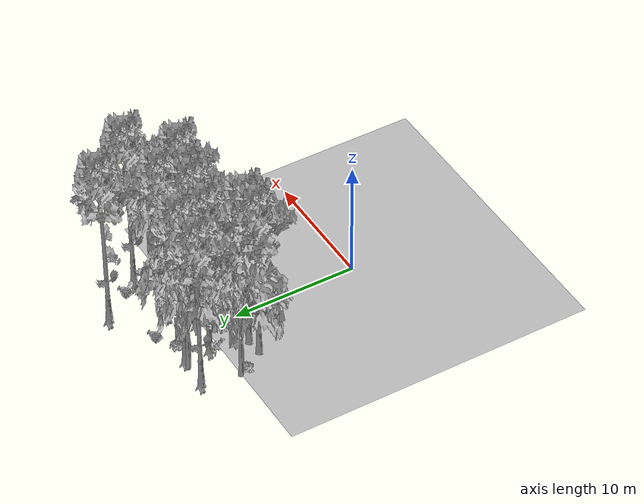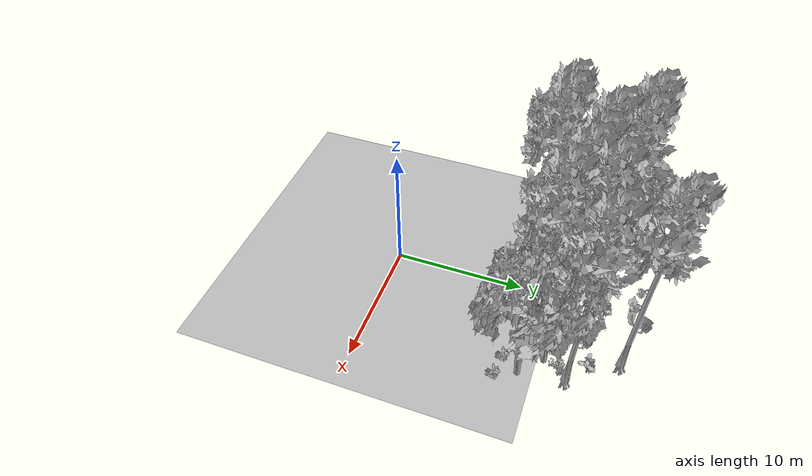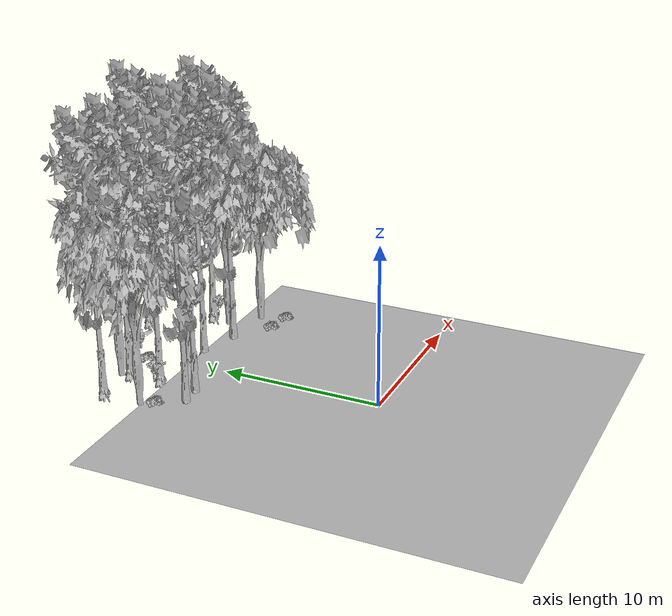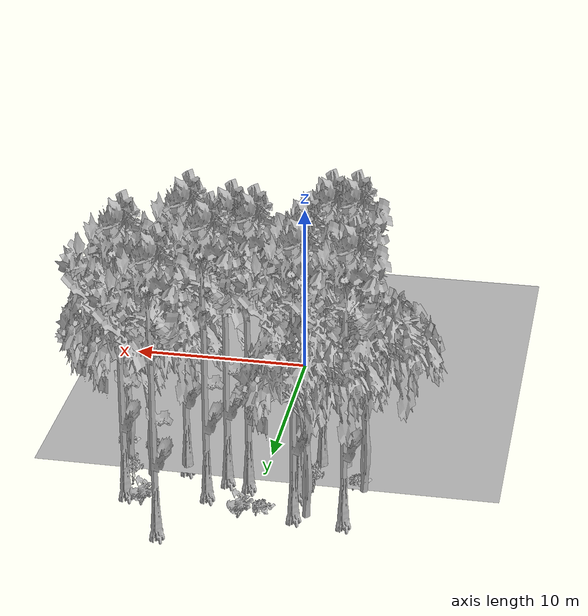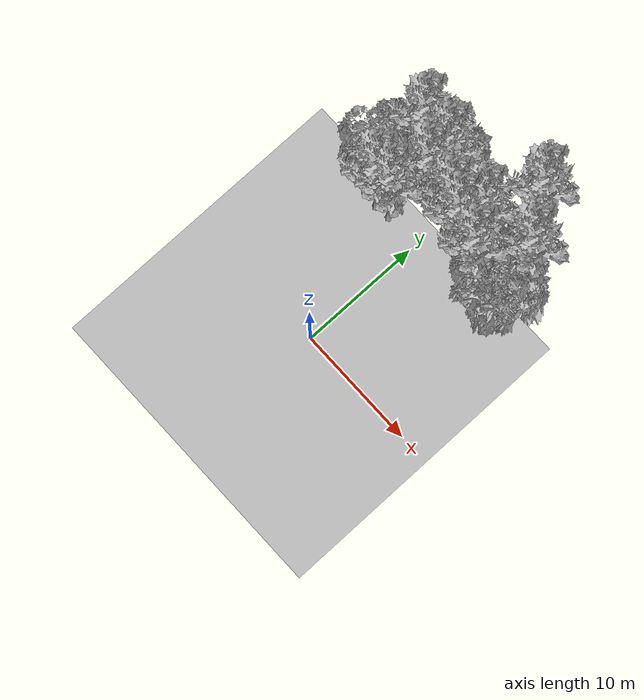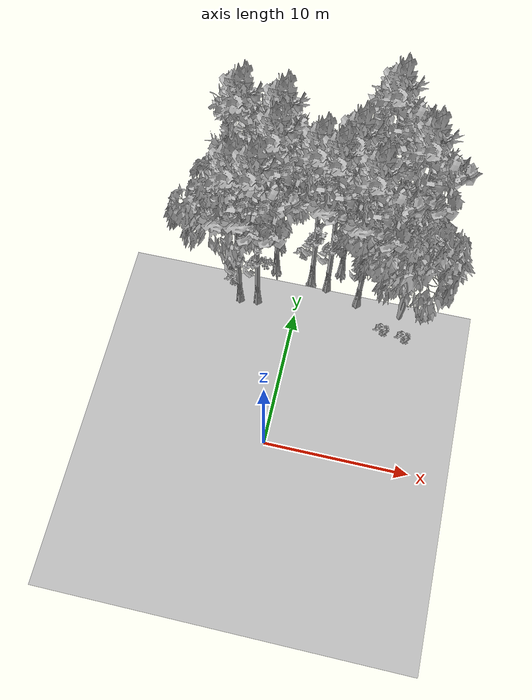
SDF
<sdf version="1.7">
 <world name="default">
  <model name="ground_plane">
   <static>1</static>
   <link name="link">
    <collision name="collision">
     <pose>-50 0 0 0 -0 0</pose>
     <geometry><plane><normal>0 0 1</normal><size>80 80</size></plane></geometry>
     <surface><contact><ode><min_depth>0.01</min_depth><max_vel>0</max_vel></ode></contact></surface>
    </collision>
    <visual name="grass">
     <cast_shadows>0</cast_shadows>
     <geometry>
      <mesh>
       <scale>0.46714285714285714 0.46714285714285714 0.1</scale>
       <uri>file://grass_plane/meshes/grass_plane.dae</uri>
      </mesh>
     </geometry>
    </visual>
   </link>
  </model>
  <model name="Tree 4">
   <static>1</static>
   <pose>-5.57250292588845 12.669635630537641 0 1.57079 -0 0</pose>
   <link name="link">
    <collision name="collision">
     <geometry><mesh><scale>3.5 5 3.5</scale><uri>model://tree_2/meshes/tree_2.obj</uri></mesh></geometry>
    </collision>
    <visual name="visual">
     <geometry><mesh><scale>3.5 5 3.5</scale><uri>model://tree_2/meshes/tree_2.obj</uri></mesh></geometry>
    </visual>
   </link>
  </model>
  <model name="Tree 12">
   <static>1</static>
   <pose>-2.9900764032534752 15.596608024744583 0 1.57079 -0 0</pose>
   <link name="link">
    <collision name="collision">
     <geometry><mesh><scale>3.5 5 3.5</scale><uri>model://tree_2/meshes/tree_2.obj</uri></mesh></geometry>
    </collision>
    <visual name="visual">
     <geometry><mesh><scale>3.5 5 3.5</scale><uri>model://tree_2/meshes/tree_2.obj</uri></mesh></geometry>
    </visual>
   </link>
  </model>
  <model name="Tree 43">
   <static>1</static>
   <pose>5.812354734501767 13.063433836532326 0 1.57079 -0 0</pose>
   <link name="link">
    <collision name="collision">
     <geometry><mesh><scale>3.5 5 3.5</scale><uri>model://tree_2/meshes/tree_2.obj</uri></mesh></geometry>
    </collision>
    <visual name="visual">
     <geometry><mesh><scale>3.5 5 3.5</scale><uri>model://tree_2/meshes/tree_2.obj</uri></mesh></geometry>
    </visual>
   </link>
  </model>
  <model name="Tree 52">
   <static>1</static>
   <pose>4.270646497116481 11.854107469488078 0 1.57079 -0 0</pose>
   <link name="link">
    <collision name="collision">
     <geometry><mesh><scale>3.5 5 3.5</scale><uri>model://tree_9/meshes/tree_9.obj</uri></mesh></geometry>
    </collision>
    <visual name="visual">
     <geometry><mesh><scale>3.5 5 3.5</scale><uri>model://tree_9/meshes/tree_9.obj</uri></mesh></geometry>
    </visual>
   </link>
  </model>
  <model name="Tree 168">
   <static>1</static>
   <pose>2.66477718896941 14.245403684472429 0 1.57079 -0 0</pose>
   <link name="link">
    <collision name="collision">
     <geometry><mesh><scale>3.5 5 3.5</scale><uri>model://tree_9/meshes/tree_9.obj</uri></mesh></geometry>
    </collision>
    <visual name="visual">
     <geometry><mesh><scale>3.5 5 3.5</scale><uri>model://tree_9/meshes/tree_9.obj</uri></mesh></geometry>
    </visual>
   </link>
  </model>
  <model name="Tree 203">
   <static>1</static>
   <pose>-2.1839248891359873 15.476199720841244 0 1.57079 -0 0</pose>
   <link name="link">
    <collision name="collision">
     <geometry><mesh><scale>3.5 5 3.5</scale><uri>model://tree_9/meshes/tree_9.obj</uri></mesh></geometry>
    </collision>
    <visual name="visual">
     <geometry><mesh><scale>3.5 5 3.5</scale><uri>model://tree_9/meshes/tree_9.obj</uri></mesh></geometry>
    </visual>
   </link>
  </model>
  <model name="Tree 325">
   <static>1</static>
   <pose>1.8869225295949903 12.631980839529078 0 1.57079 -0 0</pose>
   <link name="link">
    <collision name="collision">
     <geometry><mesh><scale>3.5 5 3.5</scale><uri>model://tree_9/meshes/tree_9.obj</uri></mesh></geometry>
    </collision>
    <visual name="visual">
     <geometry><mesh><scale>3.5 5 3.5</scale><uri>model://tree_9/meshes/tree_9.obj</uri></mesh></geometry>
    </visual>
   </link>
  </model>
  <model name="Tree 396">
   <static>1</static>
   <pose>6.942436247584176 14.835887577010368 0 1.57079 -0 0</pose>
   <link name="link">
    <collision name="collision">
     <geometry><mesh><scale>3.5 5 3.5</scale><uri>model://tree_9/meshes/tree_9.obj</uri></mesh></geometry>
    </collision>
    <visual name="visual">
     <geometry><mesh><scale>3.5 5 3.5</scale><uri>model://tree_9/meshes/tree_9.obj</uri></mesh></geometry>
    </visual>
   </link>
  </model>
  <model name="Tree 398">
   <static>1</static>
   <pose>-4.141241068518148 10.40390125349056 0 1.57079 -0 0</pose>
   <link name="link">
    <collision name="collision">
     <geometry><mesh><scale>3.5 5 3.5</scale><uri>model://tree_9/meshes/tree_9.obj</uri></mesh></geometry>
    </collision>
    <visual name="visual">
     <geometry><mesh><scale>3.5 5 3.5</scale><uri>model://tree_9/meshes/tree_9.obj</uri></mesh></geometry>
    </visual>
   </link>
  </model>
  <model name="Tree 403">
   <static>1</static>
   <pose>-2.0988443192668313 13.408350697797275 0 1.57079 -0 0</pose>
   <link name="link">
    <collision name="collision">
     <geometry><mesh><scale>3.5 5 3.5</scale><uri>model://tree_9/meshes/tree_9.obj</uri></mesh></geometry>
    </collision>
    <visual name="visual">
     <geometry><mesh><scale>3.5 5 3.5</scale><uri>model://tree_9/meshes/tree_9.obj</uri></mesh></geometry>
    </visual>
   </link>
  </model>
  <model name="Tree 443">
   <static>1</static>
   <pose>4.438468553258247 18.23811473167997 0 1.57079 -0 0</pose>
   <link name="link">
    <collision name="collision">
     <geometry><mesh><scale>3.5 5 3.5</scale><uri>model://tree_9/meshes/tree_9.obj</uri></mesh></geometry>
    </collision>
    <visual name="visual">
     <geometry><mesh><scale>3.5 5 3.5</scale><uri>model://tree_9/meshes/tree_9.obj</uri></mesh></geometry>
    </visual>
   </link>
  </model>
  <model name="Tree 467">
   <static>1</static>
   <pose>7.40344184287968 11.546339156241324 0 1.57079 -0 0</pose>
   <link name="link">
    <collision name="collision">
     <geometry><mesh><scale>3.5 5 3.5</scale><uri>model://tree_2/meshes/tree_2.obj</uri></mesh></geometry>
    </collision>
    <visual name="visual">
     <geometry><mesh><scale>3.5 5 3.5</scale><uri>model://tree_2/meshes/tree_2.obj</uri></mesh></geometry>
    </visual>
   </link>
  </model>
  <model name="Tree 515">
   <static>1</static>
   <pose>-2.862370637800538 10.526283348707615 0 1.57079 -0 0</pose>
   <link name="link">
    <collision name="collision">
     <geometry><mesh><scale>3.5 5 3.5</scale><uri>model://tree_9/meshes/tree_9.obj</uri></mesh></geometry>
    </collision>
    <visual name="visual">
     <geometry><mesh><scale>3.5 5 3.5</scale><uri>model://tree_9/meshes/tree_9.obj</uri></mesh></geometry>
    </visual>
   </link>
  </model>
  <model name="Tree 525">
   <static>1</static>
   <pose>0.6735204403044577 12.980882716261348 0 1.57079 -0 0</pose>
   <link name="link">
    <collision name="collision">
     <geometry><mesh><scale>3.5 5 3.5</scale><uri>model://tree_9/meshes/tree_9.obj</uri></mesh></geometry>
    </collision>
    <visual name="visual">
     <geometry><mesh><scale>3.5 5 3.5</scale><uri>model://tree_9/meshes/tree_9.obj</uri></mesh></geometry>
    </visual>
   </link>
  </model>
  <model name="Tree 540">
   <static>1</static>
   <pose>-4.833843474009797 15.627119563273581 0 1.57079 -0 0</pose>
   <link name="link">
    <collision name="collision">
     <geometry><mesh><scale>3.5 5 3.5</scale><uri>model://tree_9/meshes/tree_9.obj</uri></mesh></geometry>
    </collision>
    <visual name="visual">
     <geometry><mesh><scale>3.5 5 3.5</scale><uri>model://tree_9/meshes/tree_9.obj</uri></mesh></geometry>
    </visual>
   </link>
  </model>
  <model name="Bush 86">
   <static>1</static>
   <pose>6.412089300315991 10.247224966646584 0 1.57079 -0 0</pose>
   <link name="link">
    <collision name="collision">
     <geometry><mesh><scale>2 2 2</scale><uri>model://bush_2/meshes/bush_2.obj</uri></mesh></geometry>
     <surface><contact><collide_without_contact>false</collide_without_contact></contact></surface>
    </collision>
    <visual name="visual">
     <geometry><mesh><scale>2 2 2</scale><uri>model://bush_2/meshes/bush_2.obj</uri></mesh></geometry>
    </visual>
   </link>
  </model>
  <model name="Bush 243">
   <static>1</static>
   <pose>6.709467960673919 14.265869603304466 0 1.57079 -0 0</pose>
   <link name="link">
    <collision name="collision">
     <geometry><mesh><scale>2 2 2</scale><uri>model://bush_5/meshes/bush_5.obj</uri></mesh></geometry>
     <surface><contact><collide_without_contact>false</collide_without_contact></contact></surface>
    </collision>
    <visual name="visual">
     <geometry><mesh><scale>2 2 2</scale><uri>model://bush_5/meshes/bush_5.obj</uri></mesh></geometry>
    </visual>
   </link>
  </model>
  <model name="Bush 254">
   <static>1</static>
   <pose>-5.100876763178114 11.90536668349565 0 1.57079 -0 0</pose>
   <link name="link">
    <collision name="collision">
     <geometry><mesh><scale>2 2 2</scale><uri>model://bush_2/meshes/bush_2.obj</uri></mesh></geometry>
     <surface><contact><collide_without_contact>false</collide_without_contact></contact></surface>
    </collision>
    <visual name="visual">
     <geometry><mesh><scale>2 2 2</scale><uri>model://bush_2/meshes/bush_2.obj</uri></mesh></geometry>
    </visual>
   </link>
  </model>
  <model name="Bush 337">
   <static>1</static>
   <pose>-0.5104423766045798 15.238994429875603 0 1.57079 -0 0</pose>
   <link name="link">
    <collision name="collision">
     <geometry><mesh><scale>2 2 2</scale><uri>model://bush_2/meshes/bush_2.obj</uri></mesh></geometry>
     <surface><contact><collide_without_contact>false</collide_without_contact></contact></surface>
    </collision>
    <visual name="visual">
     <geometry><mesh><scale>2 2 2</scale><uri>model://bush_2/meshes/bush_2.obj</uri></mesh></geometry>
    </visual>
   </link>
  </model>
  <model name="Bush 427">
   <static>1</static>
   <pose>0.5708742278918635 16.43106317821549 0 1.57079 -0 0</pose>
   <link name="link">
    <collision name="collision">
     <geometry><mesh><scale>2 2 2</scale><uri>model://bush_0/meshes/bush_0.obj</uri></mesh></geometry>
     <surface><contact><collide_without_contact>false</collide_without_contact></contact></surface>
    </collision>
    <visual name="visual">
     <geometry><mesh><scale>2 2 2</scale><uri>model://bush_0/meshes/bush_0.obj</uri></mesh></geometry>
    </visual>
   </link>
  </model>
  <model name="Bush 516">
   <static>1</static>
   <pose>5.799929346137624 16.110605107892006 0 1.57079 -0 0</pose>
   <link name="link">
    <collision name="collision">
     <geometry><mesh><scale>2 2 2</scale><uri>model://bush_0/meshes/bush_0.obj</uri></mesh></geometry>
     <surface><contact><collide_without_contact>false</collide_without_contact></contact></surface>
    </collision>
    <visual name="visual">
     <geometry><mesh><scale>2 2 2</scale><uri>model://bush_0/meshes/bush_0.obj</uri></mesh></geometry>
    </visual>
   </link>
  </model>
  <model name="Bush 624">
   <static>1</static>
   <pose>-2.8341436072390493 13.368371868745406 0 1.57079 -0 0</pose>
   <link name="link">
    <collision name="collision">
     <geometry><mesh><scale>2 2 2</scale><uri>model://bush_5/meshes/bush_5.obj</uri></mesh></geometry>
     <surface><contact><collide_without_contact>false</collide_without_contact></contact></surface>
    </collision>
    <visual name="visual">
     <geometry><mesh><scale>2 2 2</scale><uri>model://bush_5/meshes/bush_5.obj</uri></mesh></geometry>
    </visual>
   </link>
  </model>
  <model name="Bush 635">
   <static>1</static>
   <pose>8.013739442563292 9.99291737765099 0 1.57079 -0 0</pose>
   <link name="link">
    <collision name="collision">
     <geometry><mesh><scale>2 2 2</scale><uri>model://bush_2/meshes/bush_2.obj</uri></mesh></geometry>
     <surface><contact><collide_without_contact>false</collide_without_contact></contact></surface>
    </collision>
    <visual name="visual">
     <geometry><mesh><scale>2 2 2</scale><uri>model://bush_2/meshes/bush_2.obj</uri></mesh></geometry>
    </visual>
   </link>
  </model>
 </world>
</sdf>
